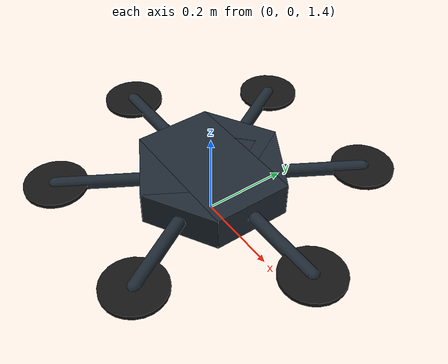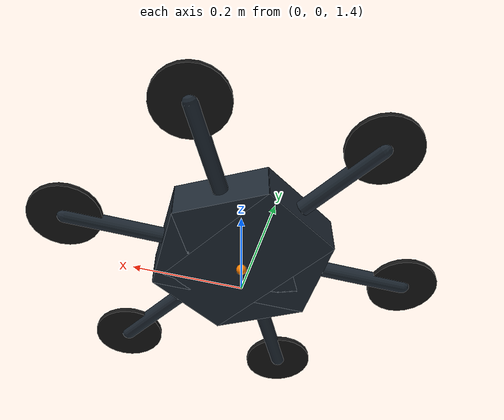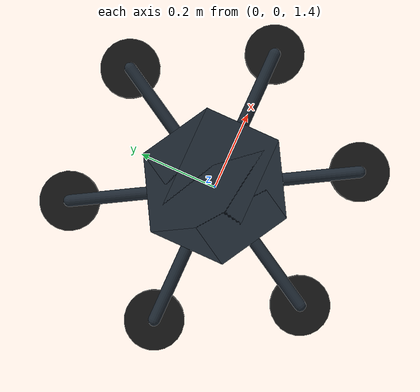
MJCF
<mujoco model="multirotor_platform">
  <compiler angle="radian"/>
  <option timestep="0.001" gravity="0 0 -9.81"/>

  <asset>
    <material name="drone_mat" rgba="0.12 0.16 0.20 1"/>
  </asset>

  <worldbody>
    <body name="drone" pos="0 0 1.5">
      <freejoint name="drone_free"/>

      <!-- IMU 与机械臂挂载点（机体系） -->
      <site name="imu_site" pos="0 0 0" size="0.008" rgba="0 1 0 1"/>
      <site name="manipulator_mount" pos="0 0 -0.05" size="0.01" rgba="1 0.5 0 1"/>

      <!-- 机身：三块交叉面板 + 六条机臂 -->
      <geom name="drone_panel_1" type="box" pos="0 0 0" euler="0 0 0" size="0.155 0.090 0.04" material="drone_mat" mass="0.50"/>
      <geom name="drone_panel_2" type="box" pos="0 0 0" euler="0 0 1.0471975512" size="0.155 0.090 0.04" material="drone_mat" mass="0.50"/>
      <geom name="drone_panel_3" type="box" pos="0 0 0" euler="0 0 -1.0471975512" size="0.155 0.090 0.04" material="drone_mat" mass="0.50"/>
      <geom name="rotor1_arm" type="capsule" fromto="0 0 0 0.34 0 0" size="0.015" material="drone_mat" mass="0.03"/>
      <geom name="rotor2_arm" type="capsule" fromto="0 0 0 0.17 0.294 0" size="0.015" material="drone_mat" mass="0.03"/>
      <geom name="rotor3_arm" type="capsule" fromto="0 0 0 -0.17 0.294 0" size="0.015" material="drone_mat" mass="0.03"/>
      <geom name="rotor4_arm" type="capsule" fromto="0 0 0 -0.34 0 0" size="0.015" material="drone_mat" mass="0.03"/>
      <geom name="rotor5_arm" type="capsule" fromto="0 0 0 -0.17 -0.294 0" size="0.015" material="drone_mat" mass="0.03"/>
      <geom name="rotor6_arm" type="capsule" fromto="0 0 0 0.17 -0.294 0" size="0.015" material="drone_mat" mass="0.03"/>

      <body name="rotor1_body" pos="0.34 0 0">
        <site name="rotor1_site" pos="0 0 0" size="0.01"/>
        <geom type="cylinder" size="0.07 0.005" rgba="0.08 0.08 0.08 1" mass="0.01"/>
      </body>
      <body name="rotor2_body" pos="0.17 0.294 0">
        <site name="rotor2_site" pos="0 0 0" size="0.01"/>
        <geom type="cylinder" size="0.07 0.005" rgba="0.08 0.08 0.08 1" mass="0.01"/>
      </body>
      <body name="rotor3_body" pos="-0.17 0.294 0">
        <site name="rotor3_site" pos="0 0 0" size="0.01"/>
        <geom type="cylinder" size="0.07 0.005" rgba="0.08 0.08 0.08 1" mass="0.01"/>
      </body>
      <body name="rotor4_body" pos="-0.34 0 0">
        <site name="rotor4_site" pos="0 0 0" size="0.01"/>
        <geom type="cylinder" size="0.07 0.005" rgba="0.08 0.08 0.08 1" mass="0.01"/>
      </body>
      <body name="rotor5_body" pos="-0.17 -0.294 0">
        <site name="rotor5_site" pos="0 0 0" size="0.01"/>
        <geom type="cylinder" size="0.07 0.005" rgba="0.08 0.08 0.08 1" mass="0.01"/>
      </body>
      <body name="rotor6_body" pos="0.17 -0.294 0">
        <site name="rotor6_site" pos="0 0 0" size="0.01"/>
        <geom type="cylinder" size="0.07 0.005" rgba="0.08 0.08 0.08 1" mass="0.01"/>
      </body>
    </body>
  </worldbody>

  <actuator>
    <!-- gear = [Fx Fy Fz Tx Ty Tz]：Z 升力 + Z 反扭矩，奇偶旋翼反扭矩反向（模拟正/反转桨） -->
    <motor name="rotor1" site="rotor1_site" gear="0 0 1 0 0 0.02" ctrlrange="0 12"/>
    <motor name="rotor2" site="rotor2_site" gear="0 0 1 0 0 -0.02" ctrlrange="0 12"/>
    <motor name="rotor3" site="rotor3_site" gear="0 0 1 0 0 0.02" ctrlrange="0 12"/>
    <motor name="rotor4" site="rotor4_site" gear="0 0 1 0 0 -0.02" ctrlrange="0 12"/>
    <motor name="rotor5" site="rotor5_site" gear="0 0 1 0 0 0.02" ctrlrange="0 12"/>
    <motor name="rotor6" site="rotor6_site" gear="0 0 1 0 0 -0.02" ctrlrange="0 12"/>
  </actuator>

  <sensor>
    <!-- 机体 IMU（以后对接 PX4 HITL 也靠这两个） -->
    <gyro name="gyro" site="imu_site"/>
    <accelerometer name="accel" site="imu_site"/>
    <magnetometer name="mag" site="imu_site"/>
    <!-- MJCF 无 barometer 元素；气压高度可由 drone_pos 的 Z 分量换算 -->
    <!-- 机体全局位姿 -->
    <framepos name="drone_pos" objtype="body" objname="drone"/>
    <framequat name="drone_quat" objtype="body" objname="drone"/>
    <!-- 挂载点全局位姿（验证机械臂固连位置用） -->
    <framepos name="mount_pos" objtype="site" objname="manipulator_mount"/>
    <framequat name="mount_quat" objtype="site" objname="manipulator_mount"/>
  </sensor>
</mujoco>
